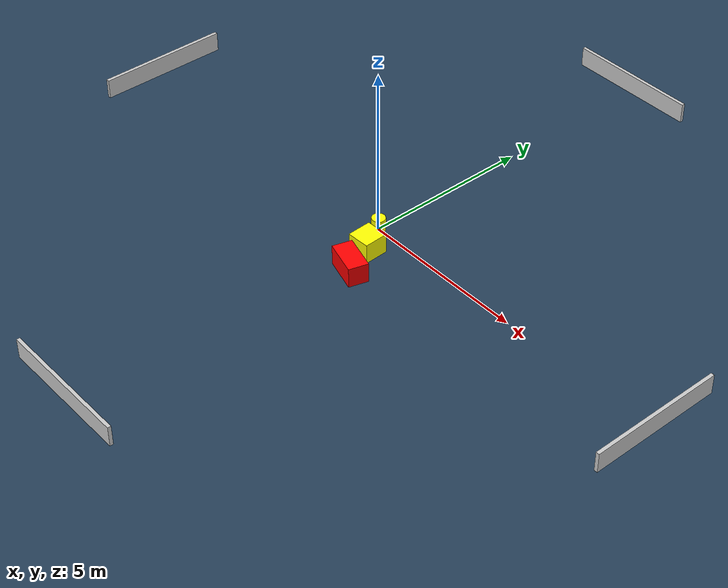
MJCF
<?xml version="1.0" ?>
<mujoco model="generated_environment">
  <option timestep="0.01" integrator="RK4" cone="elliptic"/>
  <default>
    <geom density="1"/>
  </default>
  <asset>
    <texture builtin="gradient" height="3072" name="skybox" rgb1="0.3 0.5 0.7" rgb2="0 0 0" type="skybox" width="512"/>
    <texture builtin="checker" height="300" name="groundplane" rgb1="0.2 0.3 0.4" rgb2="0.1 0.2 0.3" type="2d" width="300"/>
    <material name="groundplane" reflectance="0.2" texrepeat="5 5" texture="groundplane"/>
  </asset>
  <worldbody>
    <light dir="0 0 -1" directional="true" pos="0 0 1.5"/>
    <geom condim="3" friction="0.5 0.005 0.001" material="groundplane" name="floor" pos="0 0 0" size="0 0 0.05" type="plane"/>
    <body name="walls">
      <geom name="wall_1" condim="4" pos="-10.0 0.0 0.3" rgba="0.800000011920929 0.800000011920929 0.800000011920929 1.0" size="0.05 2.0 0.3" type="box"/>
      <geom name="wall_2" condim="4" pos="10.0 0.0 0.3" rgba="0.800000011920929 0.800000011920929 0.800000011920929 1.0" size="0.05 2.0 0.3" type="box"/>
      <geom name="wall_3" condim="4" pos="0.0 -10.0 0.3" rgba="0.800000011920929 0.800000011920929 0.800000011920929 1.0" size="2.0 0.05 0.3" type="box"/>
      <geom name="wall_4" condim="4" pos="0.0 10.0 0.3" rgba="0.800000011920929 0.800000011920929 0.800000011920929 1.0" size="2.0 0.05 0.3" type="box"/>
    </body>
    <body name="robot">
      <joint name="joint_x" type="slide" pos="0 0 0" axis="1 0 0"/>
      <joint name="joint_y" type="slide" pos="0 0 0" axis="0 1 0"/>
      <geom name="robot" type="cylinder" pos="0.0 0.0 0.2" size="0.2 0.2 0.0" mass="5.0" friction="1.0 0.005 0.0001" condim="4" rgba="1.0 1.0 0.0 1.0"/>
    </body>
    <body name="obstacle_1_movable">
      <geom name="obstacle_1_movable" condim="4" pos="0.526919283162728 -0.834713632739238 0.3" euler="0 0 182.3723871343889" friction="0.0 0.005 0.001" rgba="1.0 1.0 0.0 1.0" size="0.3403203990558761 0.35931980101113037 0.3" type="box" mass="0.1"/>
      <joint type="free"/>
    </body>
    <body name="obstacle_2_static">
      <geom name="obstacle_2_static" condim="4" pos="0.8784939816045108 -1.7352662003757142 0.3" euler="0 0 253.90000436632042" friction="0.0 0.005 0.001" rgba="1.0 0.0 0.0 1.0" size="0.2898711830002001 0.5326912570513564 0.3" type="box"/>
    </body>
  </worldbody>
  <actuator>
    <motor name="actuator_x" joint="joint_x" gear="1" ctrlrange="-1 1"/>
    <motor name="actuator_y" joint="joint_y" gear="1" ctrlrange="-1 1"/>
  </actuator>
</mujoco>
